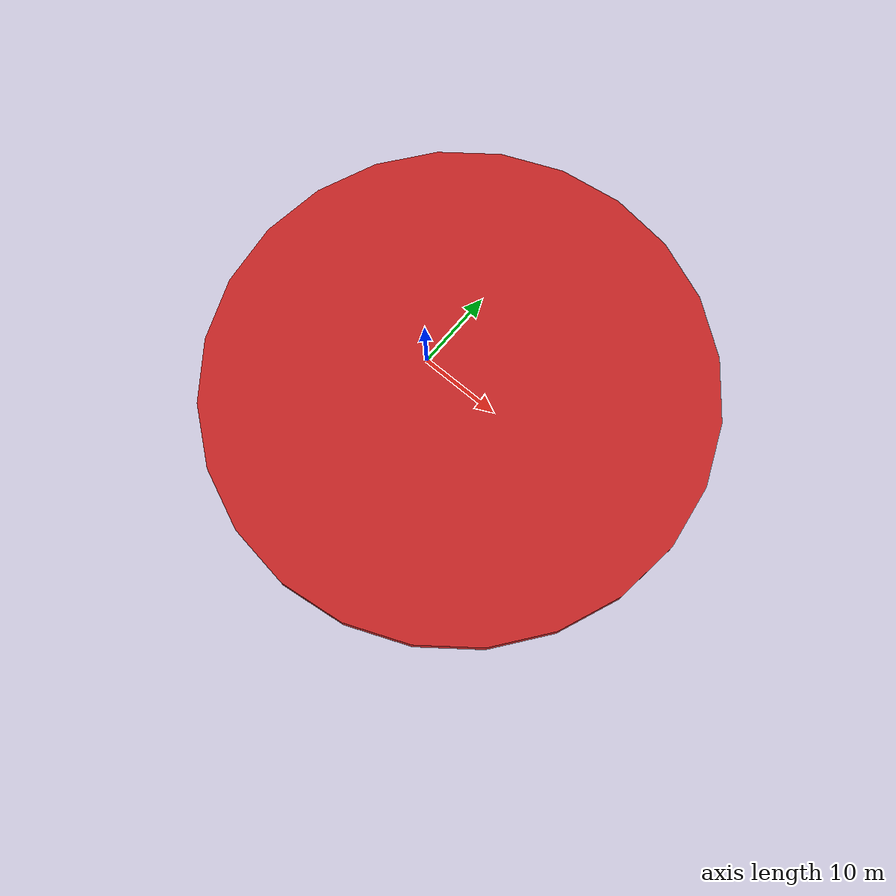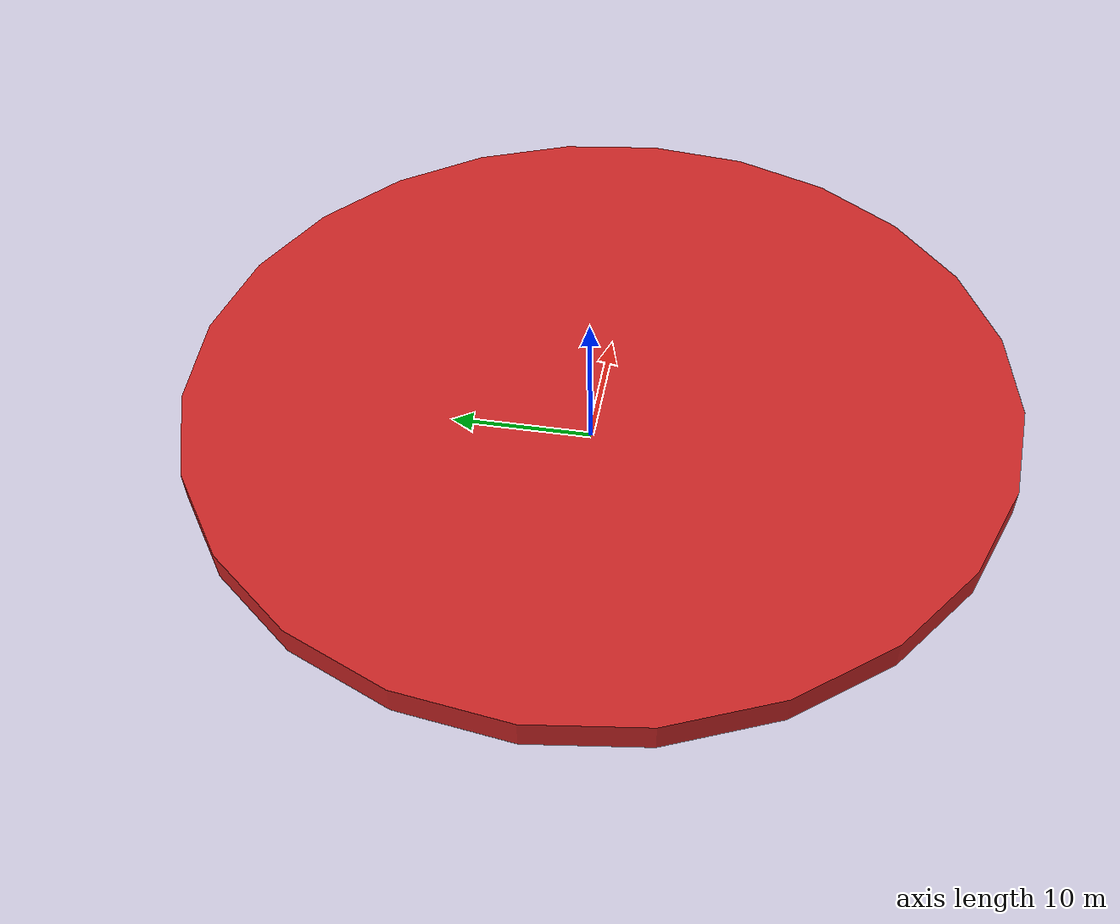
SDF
<?xml version="1.0" ?>
<sdf version="1.5">
  <model name="Target">
    <static>true</static>
    <link name="red">
      <pose>5 0 1 0 0 0</pose>
      <visual name="visual">
        <geometry>
          <cylinder>
              <radius>30</radius>
              <length>2</length>
          </cylinder>
        </geometry>
        <material>
          <script>
            <uri>file://media/materials/scripts/gazebo.material</uri>
            <name>Gazebo/Red</name>
          </script>
        </material>
        <cast_shadows>0</cast_shadows>
        <transparency>0</transparency>
      </visual>
    </link>
  </model>
</sdf>
